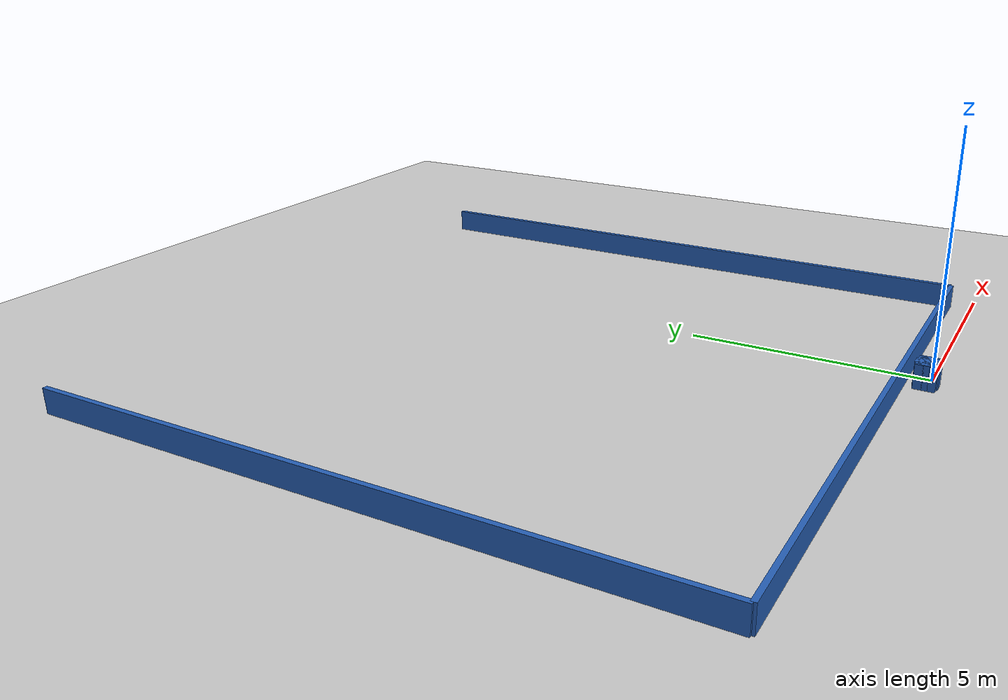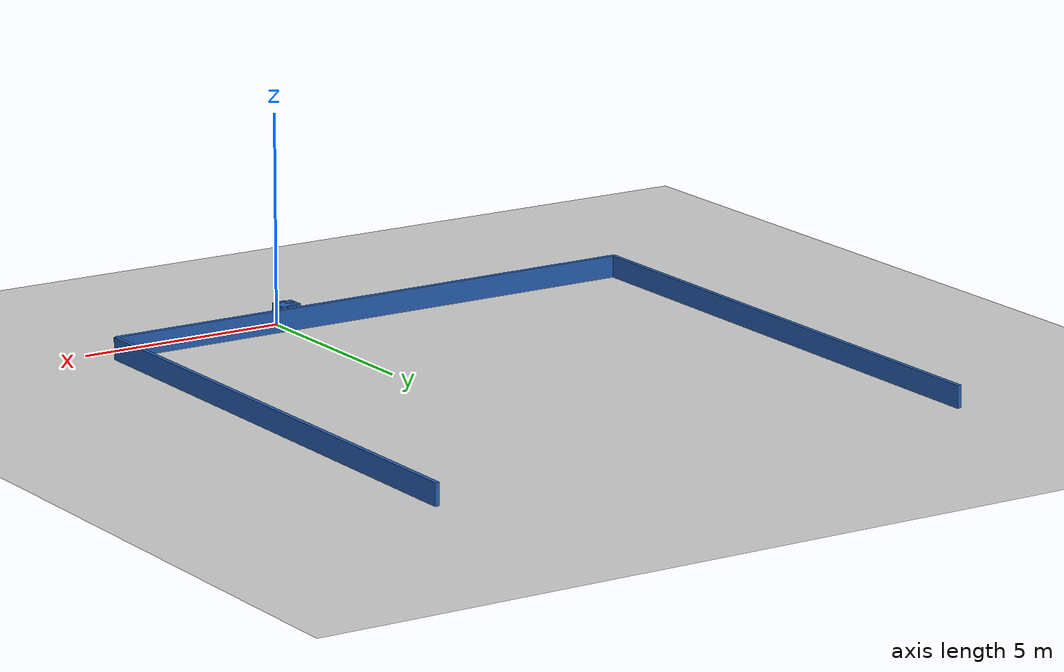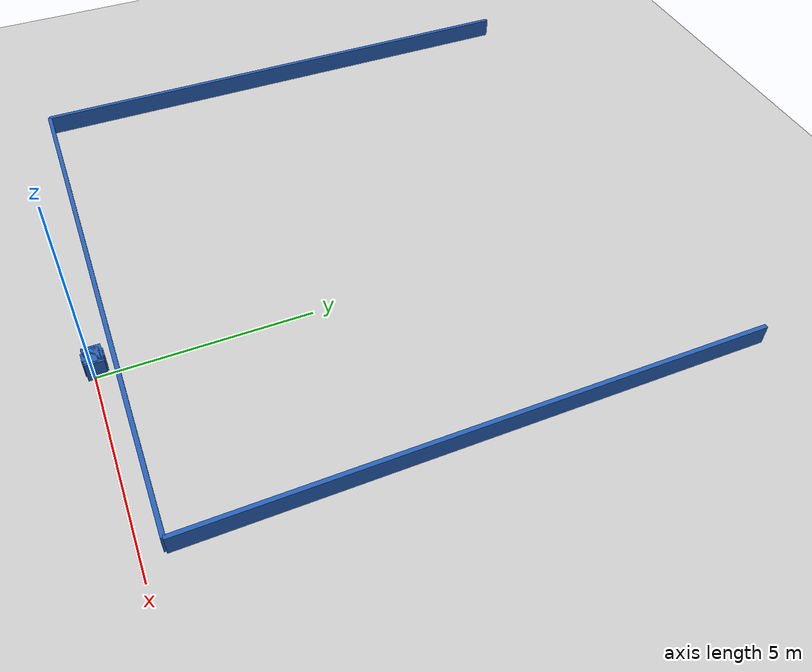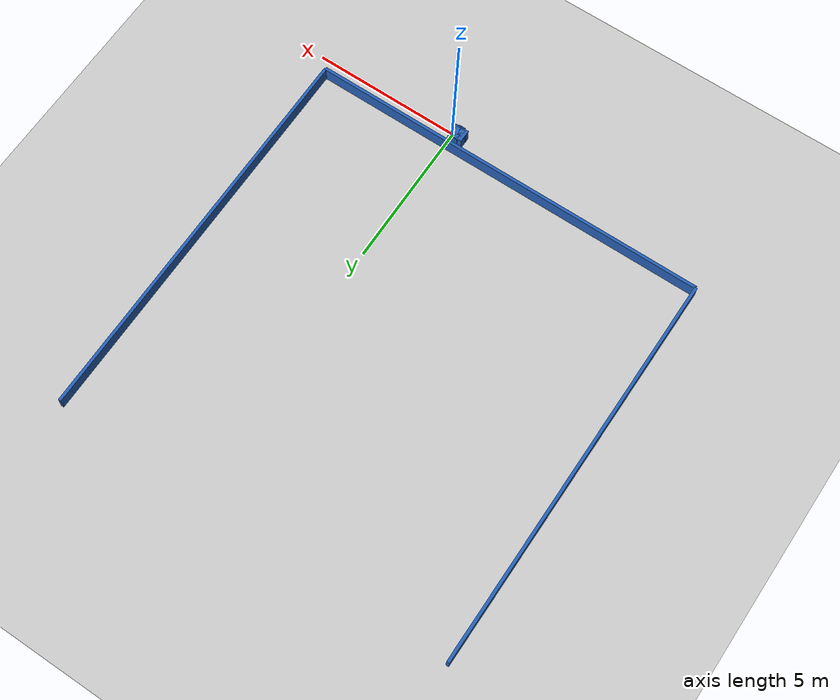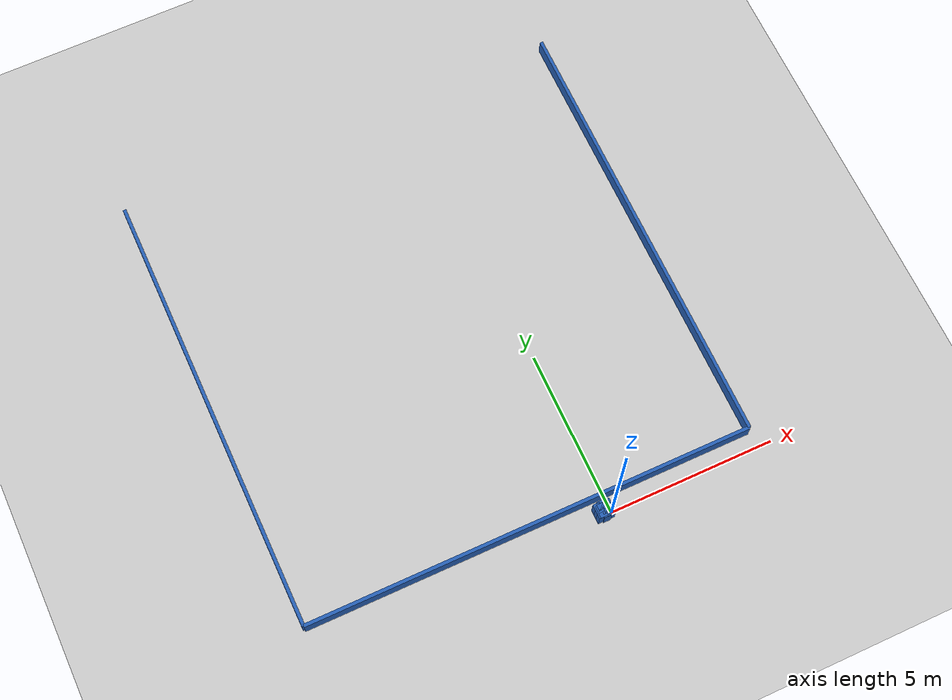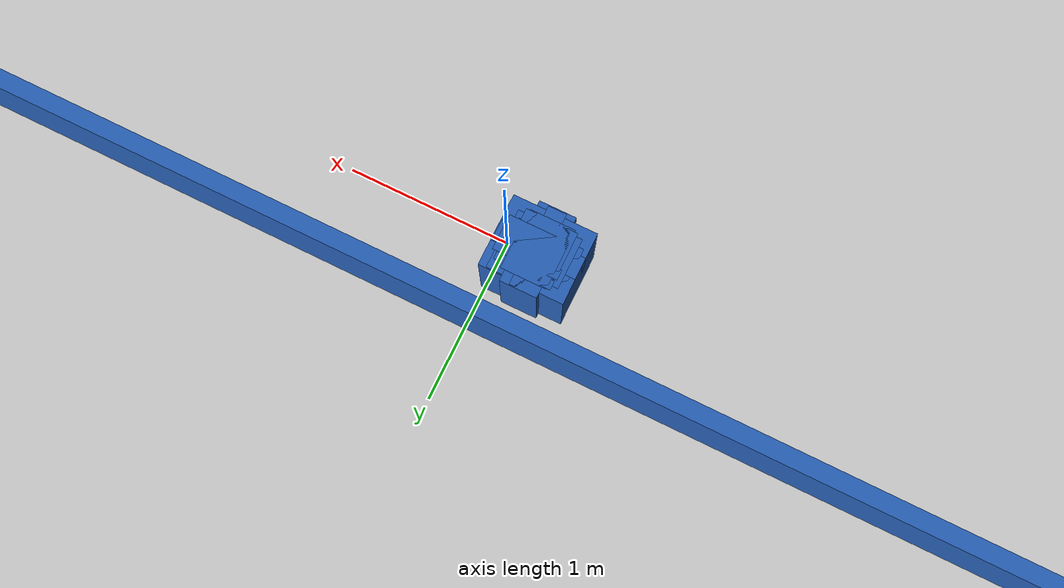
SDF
<?xml version="1.0" ?>
    <sdf version="1.5">
      <world name="default">
        <!-- A global light source -->
        <include>
          <uri>model://sun</uri>
        </include>
        <!-- A ground plane -->
        <include>
          <uri>model://ground_plane</uri>
        </include>

    <model name='libopen_space_final_T2B_51_63'>
      <static>1</static>
      <pose frame=''>-0.225000 0.075000 0.000000 0.000000 0.000000 0.000000</pose>
      <link name='link'>
        <inertial>
          <mass>1</mass>
          <inertia>
            <ixx>0.145833</ixx>
            <ixy>0</ixy>
            <ixz>0</ixz>
            <iyy>0.145833</iyy>
            <iyz>0</iyz>
            <izz>0.125</izz>
          </inertia>
        </inertial>
        <collision name='collision'>
          <geometry>
            <box>
              <size>0.31 0.34 1</size>
            </box>
          </geometry>
          <max_contacts>10</max_contacts>
          <surface>
            <contact>
              <ode/>
            </contact>
            <bounce/>
            <friction>
              <torsional>
                <ode/>
              </torsional>
              <ode/>
            </friction>
          </surface>
        </collision>
        <visual name='visual'>
          <geometry>
            <box>
              <size>0.31 0.34 1</size>
            </box>
          </geometry>
	    <material>
              <ambient>0.152000 0.379000 0.720000 1</ambient>
	      <diffuse>0.152000 0.379000 0.720000 1</diffuse>
          </material>
          <material>
            <script>
              <name>Gazebo/Grey</name>
              <uri>file://media/materials/scripts/gazebo.material</uri>
            </script>
          </material>
        </visual>
        <self_collide>0</self_collide>
        <kinematic>0</kinematic>
        <gravity>1</gravity>
      </link>
      <plugin name='libopen_space_final_T2B_51_63' filename='libopen_space_final_T2B_51_63.so'/>
    </model>

    <model name='libopen_space_final_T2B_111_18'>
      <static>1</static>
      <pose frame=''>-0.225000 0.075000 0.000000 0.000000 0.000000 0.000000</pose>
      <link name='link'>
        <inertial>
          <mass>1</mass>
          <inertia>
            <ixx>0.145833</ixx>
            <ixy>0</ixy>
            <ixz>0</ixz>
            <iyy>0.145833</iyy>
            <iyz>0</iyz>
            <izz>0.125</izz>
          </inertia>
        </inertial>
        <collision name='collision'>
          <geometry>
            <box>
              <size>0.38 0.30 1</size>
            </box>
          </geometry>
          <max_contacts>10</max_contacts>
          <surface>
            <contact>
              <ode/>
            </contact>
            <bounce/>
            <friction>
              <torsional>
                <ode/>
              </torsional>
              <ode/>
            </friction>
          </surface>
        </collision>
        <visual name='visual'>
          <geometry>
            <box>
              <size>0.38 0.30 1</size>
            </box>
          </geometry>
	    <material>
              <ambient>0.152000 0.379000 0.720000 1</ambient>
	      <diffuse>0.152000 0.379000 0.720000 1</diffuse>
          </material>
          <material>
            <script>
              <name>Gazebo/Grey</name>
              <uri>file://media/materials/scripts/gazebo.material</uri>
            </script>
          </material>
        </visual>
        <self_collide>0</self_collide>
        <kinematic>0</kinematic>
        <gravity>1</gravity>
      </link>
      <plugin name='libopen_space_final_T2B_111_18' filename='libopen_space_final_T2B_111_18.so'/>
    </model>

    <model name='libopen_space_final_T2B_122_2'>
      <static>1</static>
      <pose frame=''>-0.225000 0.075000 0.000000 0.000000 0.000000 0.000000</pose>
      <link name='link'>
        <inertial>
          <mass>1</mass>
          <inertia>
            <ixx>0.145833</ixx>
            <ixy>0</ixy>
            <ixz>0</ixz>
            <iyy>0.145833</iyy>
            <iyz>0</iyz>
            <izz>0.125</izz>
          </inertia>
        </inertial>
        <collision name='collision'>
          <geometry>
            <box>
              <size>0.11 0.48 1</size>
            </box>
          </geometry>
          <max_contacts>10</max_contacts>
          <surface>
            <contact>
              <ode/>
            </contact>
            <bounce/>
            <friction>
              <torsional>
                <ode/>
              </torsional>
              <ode/>
            </friction>
          </surface>
        </collision>
        <visual name='visual'>
          <geometry>
            <box>
              <size>0.11 0.48 1</size>
            </box>
          </geometry>
	    <material>
              <ambient>0.152000 0.379000 0.720000 1</ambient>
	      <diffuse>0.152000 0.379000 0.720000 1</diffuse>
          </material>
          <material>
            <script>
              <name>Gazebo/Grey</name>
              <uri>file://media/materials/scripts/gazebo.material</uri>
            </script>
          </material>
        </visual>
        <self_collide>0</self_collide>
        <kinematic>0</kinematic>
        <gravity>1</gravity>
      </link>
      <plugin name='libopen_space_final_T2B_122_2' filename='libopen_space_final_T2B_122_2.so'/>
    </model>

    <model name='libopen_space_final_T2B_55_44'>
      <static>1</static>
      <pose frame=''>-0.225000 0.075000 0.000000 0.000000 0.000000 0.000000</pose>
      <link name='link'>
        <inertial>
          <mass>1</mass>
          <inertia>
            <ixx>0.145833</ixx>
            <ixy>0</ixy>
            <ixz>0</ixz>
            <iyy>0.145833</iyy>
            <iyz>0</iyz>
            <izz>0.125</izz>
          </inertia>
        </inertial>
        <collision name='collision'>
          <geometry>
            <box>
              <size>0.50 0.13 1</size>
            </box>
          </geometry>
          <max_contacts>10</max_contacts>
          <surface>
            <contact>
              <ode/>
            </contact>
            <bounce/>
            <friction>
              <torsional>
                <ode/>
              </torsional>
              <ode/>
            </friction>
          </surface>
        </collision>
        <visual name='visual'>
          <geometry>
            <box>
              <size>0.50 0.13 1</size>
            </box>
          </geometry>
	    <material>
              <ambient>0.152000 0.379000 0.720000 1</ambient>
	      <diffuse>0.152000 0.379000 0.720000 1</diffuse>
          </material>
          <material>
            <script>
              <name>Gazebo/Grey</name>
              <uri>file://media/materials/scripts/gazebo.material</uri>
            </script>
          </material>
        </visual>
        <self_collide>0</self_collide>
        <kinematic>0</kinematic>
        <gravity>1</gravity>
      </link>
      <plugin name='libopen_space_final_T2B_55_44' filename='libopen_space_final_T2B_55_44.so'/>
    </model>

    <model name='libopen_space_final_T2B_67_46'>
      <static>1</static>
      <pose frame=''>-0.225000 0.075000 0.000000 0.000000 0.000000 0.000000</pose>
      <link name='link'>
        <inertial>
          <mass>1</mass>
          <inertia>
            <ixx>0.145833</ixx>
            <ixy>0</ixy>
            <ixz>0</ixz>
            <iyy>0.145833</iyy>
            <iyz>0</iyz>
            <izz>0.125</izz>
          </inertia>
        </inertial>
        <collision name='collision'>
          <geometry>
            <box>
              <size>0.38 0.17 1</size>
            </box>
          </geometry>
          <max_contacts>10</max_contacts>
          <surface>
            <contact>
              <ode/>
            </contact>
            <bounce/>
            <friction>
              <torsional>
                <ode/>
              </torsional>
              <ode/>
            </friction>
          </surface>
        </collision>
        <visual name='visual'>
          <geometry>
            <box>
              <size>0.38 0.17 1</size>
            </box>
          </geometry>
	    <material>
              <ambient>0.152000 0.379000 0.720000 1</ambient>
	      <diffuse>0.152000 0.379000 0.720000 1</diffuse>
          </material>
          <material>
            <script>
              <name>Gazebo/Grey</name>
              <uri>file://media/materials/scripts/gazebo.material</uri>
            </script>
          </material>
        </visual>
        <self_collide>0</self_collide>
        <kinematic>0</kinematic>
        <gravity>1</gravity>
      </link>
      <plugin name='libopen_space_final_T2B_67_46' filename='libopen_space_final_T2B_67_46.so'/>
    </model>

    <model name='libopen_space_final_T2B_127_53'>
      <static>1</static>
      <pose frame=''>-0.225000 0.075000 0.000000 0.000000 0.000000 0.000000</pose>
      <link name='link'>
        <inertial>
          <mass>1</mass>
          <inertia>
            <ixx>0.145833</ixx>
            <ixy>0</ixy>
            <ixz>0</ixz>
            <iyy>0.145833</iyy>
            <iyz>0</iyz>
            <izz>0.125</izz>
          </inertia>
        </inertial>
        <collision name='collision'>
          <geometry>
            <box>
              <size>0.50 0.43 1</size>
            </box>
          </geometry>
          <max_contacts>10</max_contacts>
          <surface>
            <contact>
              <ode/>
            </contact>
            <bounce/>
            <friction>
              <torsional>
                <ode/>
              </torsional>
              <ode/>
            </friction>
          </surface>
        </collision>
        <visual name='visual'>
          <geometry>
            <box>
              <size>0.50 0.43 1</size>
            </box>
          </geometry>
	    <material>
              <ambient>0.152000 0.379000 0.720000 1</ambient>
	      <diffuse>0.152000 0.379000 0.720000 1</diffuse>
          </material>
          <material>
            <script>
              <name>Gazebo/Grey</name>
              <uri>file://media/materials/scripts/gazebo.material</uri>
            </script>
          </material>
        </visual>
        <self_collide>0</self_collide>
        <kinematic>0</kinematic>
        <gravity>1</gravity>
      </link>
      <plugin name='libopen_space_final_T2B_127_53' filename='libopen_space_final_T2B_127_53.so'/>
    </model>

    <model name='libopen_space_final_T2B_77_58'>
      <static>1</static>
      <pose frame=''>-0.225000 0.075000 0.000000 0.000000 0.000000 0.000000</pose>
      <link name='link'>
        <inertial>
          <mass>1</mass>
          <inertia>
            <ixx>0.145833</ixx>
            <ixy>0</ixy>
            <ixz>0</ixz>
            <iyy>0.145833</iyy>
            <iyz>0</iyz>
            <izz>0.125</izz>
          </inertia>
        </inertial>
        <collision name='collision'>
          <geometry>
            <box>
              <size>0.49 0.12 1</size>
            </box>
          </geometry>
          <max_contacts>10</max_contacts>
          <surface>
            <contact>
              <ode/>
            </contact>
            <bounce/>
            <friction>
              <torsional>
                <ode/>
              </torsional>
              <ode/>
            </friction>
          </surface>
        </collision>
        <visual name='visual'>
          <geometry>
            <box>
              <size>0.49 0.12 1</size>
            </box>
          </geometry>
	    <material>
              <ambient>0.152000 0.379000 0.720000 1</ambient>
	      <diffuse>0.152000 0.379000 0.720000 1</diffuse>
          </material>
          <material>
            <script>
              <name>Gazebo/Grey</name>
              <uri>file://media/materials/scripts/gazebo.material</uri>
            </script>
          </material>
        </visual>
        <self_collide>0</self_collide>
        <kinematic>0</kinematic>
        <gravity>1</gravity>
      </link>
      <plugin name='libopen_space_final_T2B_77_58' filename='libopen_space_final_T2B_77_58.so'/>
    </model>

    <model name='libopen_space_final_T2B_103_35'>
      <static>1</static>
      <pose frame=''>-0.225000 0.075000 0.000000 0.000000 0.000000 0.000000</pose>
      <link name='link'>
        <inertial>
          <mass>1</mass>
          <inertia>
            <ixx>0.145833</ixx>
            <ixy>0</ixy>
            <ixz>0</ixz>
            <iyy>0.145833</iyy>
            <iyz>0</iyz>
            <izz>0.125</izz>
          </inertia>
        </inertial>
        <collision name='collision'>
          <geometry>
            <box>
              <size>0.44 0.21 1</size>
            </box>
          </geometry>
          <max_contacts>10</max_contacts>
          <surface>
            <contact>
              <ode/>
            </contact>
            <bounce/>
            <friction>
              <torsional>
                <ode/>
              </torsional>
              <ode/>
            </friction>
          </surface>
        </collision>
        <visual name='visual'>
          <geometry>
            <box>
              <size>0.44 0.21 1</size>
            </box>
          </geometry>
	    <material>
              <ambient>0.152000 0.379000 0.720000 1</ambient>
	      <diffuse>0.152000 0.379000 0.720000 1</diffuse>
          </material>
          <material>
            <script>
              <name>Gazebo/Grey</name>
              <uri>file://media/materials/scripts/gazebo.material</uri>
            </script>
          </material>
        </visual>
        <self_collide>0</self_collide>
        <kinematic>0</kinematic>
        <gravity>1</gravity>
      </link>
      <plugin name='libopen_space_final_T2B_103_35' filename='libopen_space_final_T2B_103_35.so'/>
    </model>

    <model name='libopen_space_final_T2B_61_88'>
      <static>1</static>
      <pose frame=''>-0.225000 0.075000 0.000000 0.000000 0.000000 0.000000</pose>
      <link name='link'>
        <inertial>
          <mass>1</mass>
          <inertia>
            <ixx>0.145833</ixx>
            <ixy>0</ixy>
            <ixz>0</ixz>
            <iyy>0.145833</iyy>
            <iyz>0</iyz>
            <izz>0.125</izz>
          </inertia>
        </inertial>
        <collision name='collision'>
          <geometry>
            <box>
              <size>0.17 0.31 1</size>
            </box>
          </geometry>
          <max_contacts>10</max_contacts>
          <surface>
            <contact>
              <ode/>
            </contact>
            <bounce/>
            <friction>
              <torsional>
                <ode/>
              </torsional>
              <ode/>
            </friction>
          </surface>
        </collision>
        <visual name='visual'>
          <geometry>
            <box>
              <size>0.17 0.31 1</size>
            </box>
          </geometry>
	    <material>
              <ambient>0.152000 0.379000 0.720000 1</ambient>
	      <diffuse>0.152000 0.379000 0.720000 1</diffuse>
          </material>
          <material>
            <script>
              <name>Gazebo/Grey</name>
              <uri>file://media/materials/scripts/gazebo.material</uri>
            </script>
          </material>
        </visual>
        <self_collide>0</self_collide>
        <kinematic>0</kinematic>
        <gravity>1</gravity>
      </link>
      <plugin name='libopen_space_final_T2B_61_88' filename='libopen_space_final_T2B_61_88.so'/>
    </model>

    <model name='libopen_space_final_T2B_57_10'>
      <static>1</static>
      <pose frame=''>-0.225000 0.075000 0.000000 0.000000 0.000000 0.000000</pose>
      <link name='link'>
        <inertial>
          <mass>1</mass>
          <inertia>
            <ixx>0.145833</ixx>
            <ixy>0</ixy>
            <ixz>0</ixz>
            <iyy>0.145833</iyy>
            <iyz>0</iyz>
            <izz>0.125</izz>
          </inertia>
        </inertial>
        <collision name='collision'>
          <geometry>
            <box>
              <size>0.22 0.49 1</size>
            </box>
          </geometry>
          <max_contacts>10</max_contacts>
          <surface>
            <contact>
              <ode/>
            </contact>
            <bounce/>
            <friction>
              <torsional>
                <ode/>
              </torsional>
              <ode/>
            </friction>
          </surface>
        </collision>
        <visual name='visual'>
          <geometry>
            <box>
              <size>0.22 0.49 1</size>
            </box>
          </geometry>
	    <material>
              <ambient>0.152000 0.379000 0.720000 1</ambient>
	      <diffuse>0.152000 0.379000 0.720000 1</diffuse>
          </material>
          <material>
            <script>
              <name>Gazebo/Grey</name>
              <uri>file://media/materials/scripts/gazebo.material</uri>
            </script>
          </material>
        </visual>
        <self_collide>0</self_collide>
        <kinematic>0</kinematic>
        <gravity>1</gravity>
      </link>
      <plugin name='libopen_space_final_T2B_57_10' filename='libopen_space_final_T2B_57_10.so'/>
    </model>

    <model name='libopen_space_final_T2B_90_95'>
      <static>1</static>
      <pose frame=''>-0.225000 0.075000 0.000000 0.000000 0.000000 0.000000</pose>
      <link name='link'>
        <inertial>
          <mass>1</mass>
          <inertia>
            <ixx>0.145833</ixx>
            <ixy>0</ixy>
            <ixz>0</ixz>
            <iyy>0.145833</iyy>
            <iyz>0</iyz>
            <izz>0.125</izz>
          </inertia>
        </inertial>
        <collision name='collision'>
          <geometry>
            <box>
              <size>0.27 0.36 1</size>
            </box>
          </geometry>
          <max_contacts>10</max_contacts>
          <surface>
            <contact>
              <ode/>
            </contact>
            <bounce/>
            <friction>
              <torsional>
                <ode/>
              </torsional>
              <ode/>
            </friction>
          </surface>
        </collision>
        <visual name='visual'>
          <geometry>
            <box>
              <size>0.27 0.36 1</size>
            </box>
          </geometry>
	    <material>
              <ambient>0.152000 0.379000 0.720000 1</ambient>
	      <diffuse>0.152000 0.379000 0.720000 1</diffuse>
          </material>
          <material>
            <script>
              <name>Gazebo/Grey</name>
              <uri>file://media/materials/scripts/gazebo.material</uri>
            </script>
          </material>
        </visual>
        <self_collide>0</self_collide>
        <kinematic>0</kinematic>
        <gravity>1</gravity>
      </link>
      <plugin name='libopen_space_final_T2B_90_95' filename='libopen_space_final_T2B_90_95.so'/>
    </model>

    <model name='libopen_space_final_T2B_66_3'>
      <static>1</static>
      <pose frame=''>-0.225000 0.075000 0.000000 0.000000 0.000000 0.000000</pose>
      <link name='link'>
        <inertial>
          <mass>1</mass>
          <inertia>
            <ixx>0.145833</ixx>
            <ixy>0</ixy>
            <ixz>0</ixz>
            <iyy>0.145833</iyy>
            <iyz>0</iyz>
            <izz>0.125</izz>
          </inertia>
        </inertial>
        <collision name='collision'>
          <geometry>
            <box>
              <size>0.33 0.22 1</size>
            </box>
          </geometry>
          <max_contacts>10</max_contacts>
          <surface>
            <contact>
              <ode/>
            </contact>
            <bounce/>
            <friction>
              <torsional>
                <ode/>
              </torsional>
              <ode/>
            </friction>
          </surface>
        </collision>
        <visual name='visual'>
          <geometry>
            <box>
              <size>0.33 0.22 1</size>
            </box>
          </geometry>
	    <material>
              <ambient>0.152000 0.379000 0.720000 1</ambient>
	      <diffuse>0.152000 0.379000 0.720000 1</diffuse>
          </material>
          <material>
            <script>
              <name>Gazebo/Grey</name>
              <uri>file://media/materials/scripts/gazebo.material</uri>
            </script>
          </material>
        </visual>
        <self_collide>0</self_collide>
        <kinematic>0</kinematic>
        <gravity>1</gravity>
      </link>
      <plugin name='libopen_space_final_T2B_66_3' filename='libopen_space_final_T2B_66_3.so'/>
    </model>

    <model name='libopen_space_final_T2B_115_24'>
      <static>1</static>
      <pose frame=''>-0.225000 0.075000 0.000000 0.000000 0.000000 0.000000</pose>
      <link name='link'>
        <inertial>
          <mass>1</mass>
          <inertia>
            <ixx>0.145833</ixx>
            <ixy>0</ixy>
            <ixz>0</ixz>
            <iyy>0.145833</iyy>
            <iyz>0</iyz>
            <izz>0.125</izz>
          </inertia>
        </inertial>
        <collision name='collision'>
          <geometry>
            <box>
              <size>0.31 0.35 1</size>
            </box>
          </geometry>
          <max_contacts>10</max_contacts>
          <surface>
            <contact>
              <ode/>
            </contact>
            <bounce/>
            <friction>
              <torsional>
                <ode/>
              </torsional>
              <ode/>
            </friction>
          </surface>
        </collision>
        <visual name='visual'>
          <geometry>
            <box>
              <size>0.31 0.35 1</size>
            </box>
          </geometry>
	    <material>
              <ambient>0.152000 0.379000 0.720000 1</ambient>
	      <diffuse>0.152000 0.379000 0.720000 1</diffuse>
          </material>
          <material>
            <script>
              <name>Gazebo/Grey</name>
              <uri>file://media/materials/scripts/gazebo.material</uri>
            </script>
          </material>
        </visual>
        <self_collide>0</self_collide>
        <kinematic>0</kinematic>
        <gravity>1</gravity>
      </link>
      <plugin name='libopen_space_final_T2B_115_24' filename='libopen_space_final_T2B_115_24.so'/>
    </model>

    <model name='libopen_space_final_T2B_79_14'>
      <static>1</static>
      <pose frame=''>-0.225000 0.075000 0.000000 0.000000 0.000000 0.000000</pose>
      <link name='link'>
        <inertial>
          <mass>1</mass>
          <inertia>
            <ixx>0.145833</ixx>
            <ixy>0</ixy>
            <ixz>0</ixz>
            <iyy>0.145833</iyy>
            <iyz>0</iyz>
            <izz>0.125</izz>
          </inertia>
        </inertial>
        <collision name='collision'>
          <geometry>
            <box>
              <size>0.41 0.42 1</size>
            </box>
          </geometry>
          <max_contacts>10</max_contacts>
          <surface>
            <contact>
              <ode/>
            </contact>
            <bounce/>
            <friction>
              <torsional>
                <ode/>
              </torsional>
              <ode/>
            </friction>
          </surface>
        </collision>
        <visual name='visual'>
          <geometry>
            <box>
              <size>0.41 0.42 1</size>
            </box>
          </geometry>
	    <material>
              <ambient>0.152000 0.379000 0.720000 1</ambient>
	      <diffuse>0.152000 0.379000 0.720000 1</diffuse>
          </material>
          <material>
            <script>
              <name>Gazebo/Grey</name>
              <uri>file://media/materials/scripts/gazebo.material</uri>
            </script>
          </material>
        </visual>
        <self_collide>0</self_collide>
        <kinematic>0</kinematic>
        <gravity>1</gravity>
      </link>
      <plugin name='libopen_space_final_T2B_79_14' filename='libopen_space_final_T2B_79_14.so'/>
    </model>

        <model name='bottom_wall'>
          <static>1</static>
          <pose frame=''>-2.25 0.5 0.000000 0.000000 0.000000 1.57079632</pose>
          <link name='link'>
            <inertial>
            <mass>1</mass>
            <inertia>
              <ixx>0.145833</ixx>
              <ixy>0</ixy>
              <ixz>0</ixz>
              <iyy>0.145833</iyy>
              <iyz>0</iyz>
              <izz>0.125</izz>
            </inertia>
            </inertial>
            <collision name='collision'>
            <geometry>
              <box>
              <size>0.1 13.5 1</size>
              </box>
            </geometry>
            <max_contacts>10</max_contacts>
            <surface>
              <contact>
              <ode/>
              </contact>
              <bounce/>
              <friction>
              <torsional>
                <ode/>
              </torsional>
              <ode/>
              </friction>
            </surface>
            </collision>
            <visual name='visual'>
            <geometry>
              <box>
              <size>0.1 13.5 1</size>
              </box>
            </geometry>
            <material>
              <ambient>0.152000 0.379000 0.720000 1</ambient>
            <diffuse>0.152000 0.379000 0.720000 1</diffuse>
            </material>
            <material>
              <script>
              <name>Gazebo/Grey</name>
              <uri>file://media/materials/scripts/gazebo.material</uri>
              </script>
            </material>
            </visual>
            <self_collide>0</self_collide>
            <kinematic>0</kinematic>
            <gravity>1</gravity>
          </link>
        </model>

        <model name='left_wall'>
          <static>1</static>
          <pose frame=''>-9 7.25 0.000000 0.000000 0.000000 0.000000</pose>
          <link name='link'>
            <inertial>
            <mass>1</mass>
            <inertia>
              <ixx>0.145833</ixx>
              <ixy>0</ixy>
              <ixz>0</ixz>
              <iyy>0.145833</iyy>
              <iyz>0</iyz>
              <izz>0.125</izz>
            </inertia>
            </inertial>
            <collision name='collision'>
            <geometry>
              <box>
              <size>0.1 13.5 1</size>
              </box>
            </geometry>
            <max_contacts>10</max_contacts>
            <surface>
              <contact>
              <ode/>
              </contact>
              <bounce/>
              <friction>
              <torsional>
                <ode/>
              </torsional>
              <ode/>
              </friction>
            </surface>
            </collision>
            <visual name='visual'>
            <geometry>
              <box>
              <size>0.1 13.5 1</size>
              </box>
            </geometry>
            <material>
              <ambient>0.152000 0.379000 0.720000 1</ambient>
            <diffuse>0.152000 0.379000 0.720000 1</diffuse>
            </material>
            <material>
              <script>
              <name>Gazebo/Grey</name>
              <uri>file://media/materials/scripts/gazebo.material</uri>
              </script>
            </material>
            </visual>
            <self_collide>0</self_collide>
            <kinematic>0</kinematic>
            <gravity>1</gravity>
          </link>
        </model>

        <model name='right_wall'>
          <static>1</static>
          <pose frame=''>4.5 7.25 0.000000 0.000000 0.000000 0.000000</pose>
          <link name='link'>
            <inertial>
            <mass>1</mass>
            <inertia>
              <ixx>0.145833</ixx>
              <ixy>0</ixy>
              <ixz>0</ixz>
              <iyy>0.145833</iyy>
              <iyz>0</iyz>
              <izz>0.125</izz>
            </inertia>
            </inertial>
            <collision name='collision'>
            <geometry>
              <box>
              <size>0.1 13.5 1</size>
              </box>
            </geometry>
            <max_contacts>10</max_contacts>
            <surface>
              <contact>
              <ode/>
              </contact>
              <bounce/>
              <friction>
              <torsional>
                <ode/>
              </torsional>
              <ode/>
              </friction>
            </surface>
            </collision>
            <visual name='visual'>
            <geometry>
              <box>
              <size>0.1 13.5 1</size>
              </box>
            </geometry>
            <material>
              <ambient>0.152000 0.379000 0.720000 1</ambient>
            <diffuse>0.152000 0.379000 0.720000 1</diffuse>
            </material>
            <material>
              <script>
              <name>Gazebo/Grey</name>
              <uri>file://media/materials/scripts/gazebo.material</uri>
              </script>
            </material>
            </visual>
            <self_collide>0</self_collide>
            <kinematic>0</kinematic>
            <gravity>1</gravity>
          </link>
        </model>

      </world>
    </sdf>"
